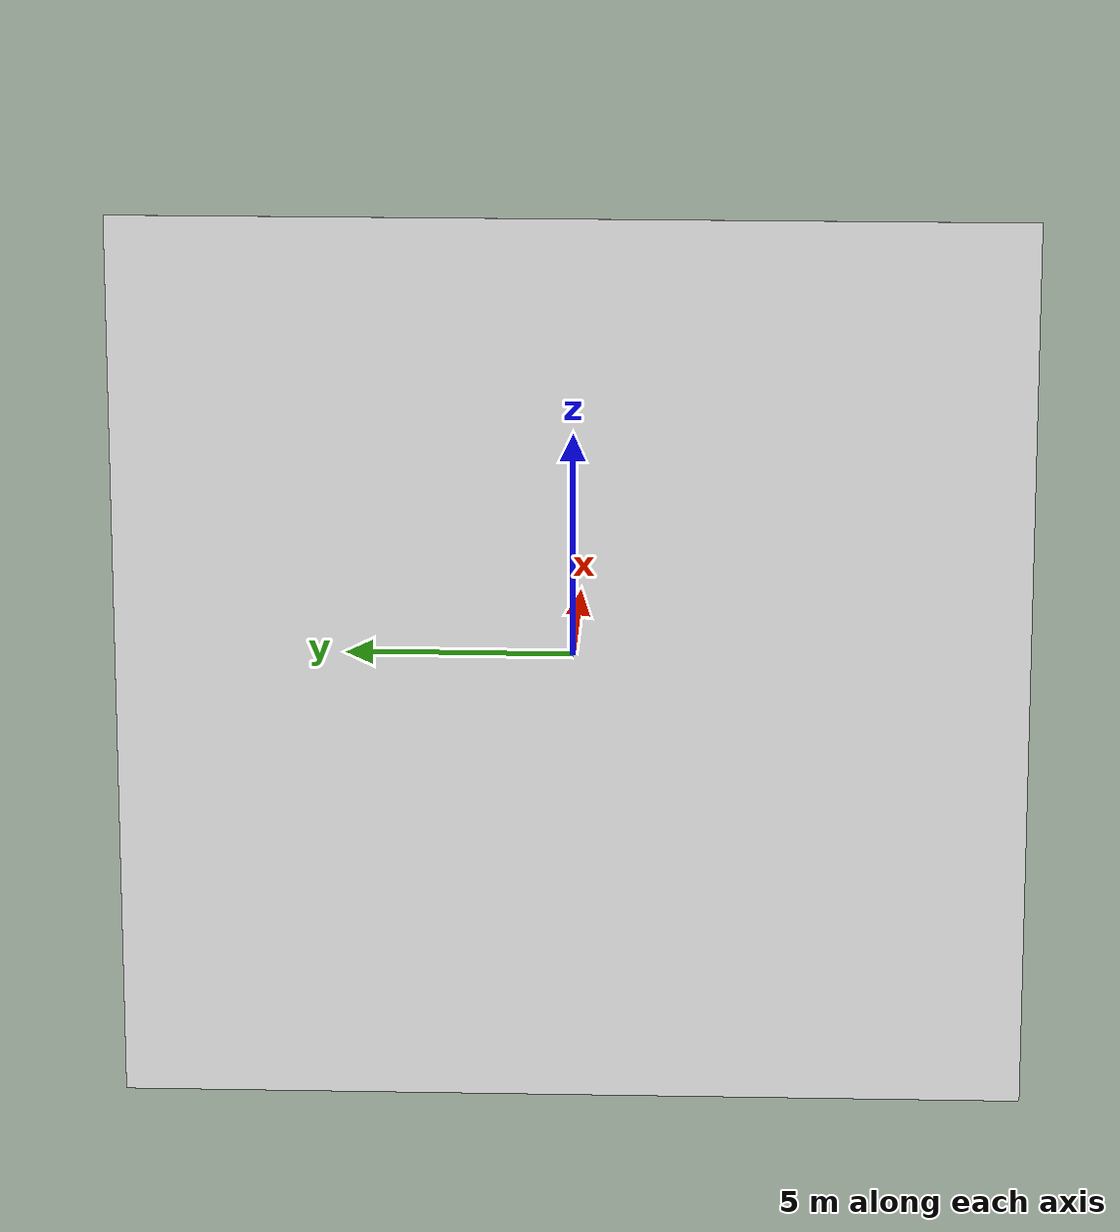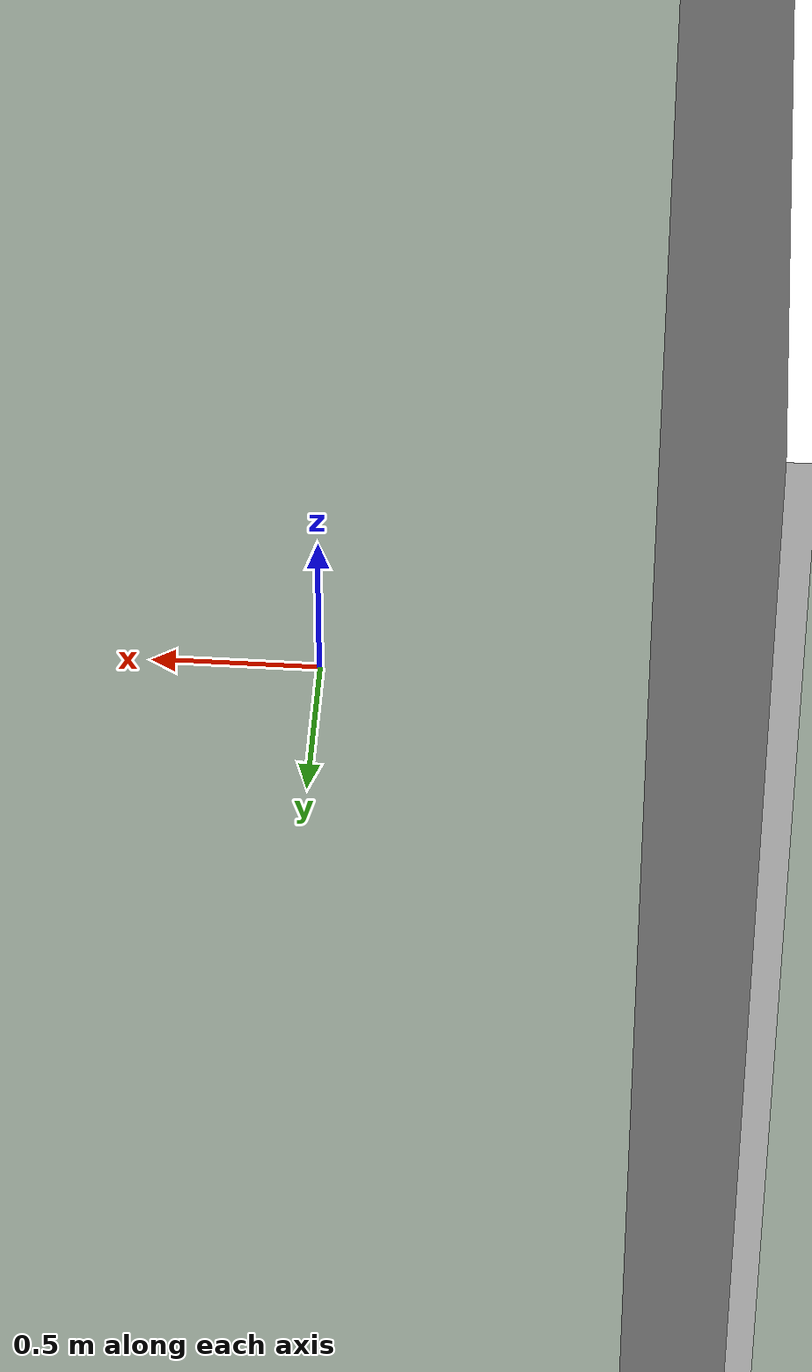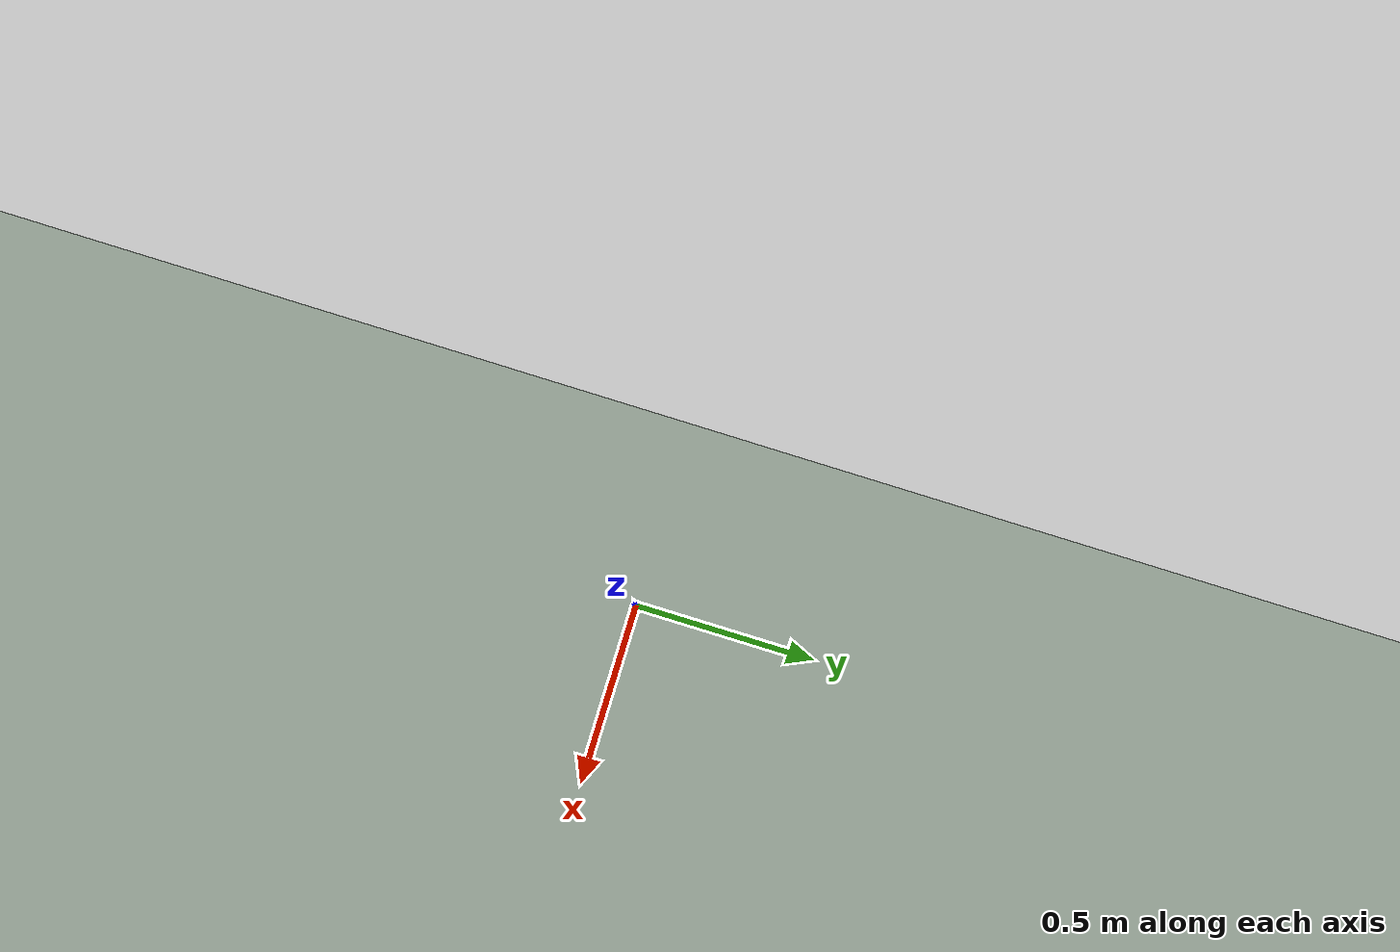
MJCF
<mujoco><asset><mesh name="tooth_plate_mesh" file="tooth_mesh.obj" /></asset><worldbody><geom type="plane" pos="-1 0 0" quat="0.707 0 0.707 0" size="10 10 10" rgba="1 1 1 1" /><body name="rack" pos="0 0 0"><joint name="rack_slider" type="slide" axis="0 1 0" range="-2 2" frictionloss="0.5" solimpfriction="0.95 0.9999 0.001 0.1 2" solreffriction="0.000075 0.030" /><geom type="sphere" size="0.000015" pos="0.0 3.0000000000000004e-08 -4.9e-06" rgba="1 0.3 0.3 1" mass="0.00041269841269841274" contype="1" conaffinity="1" /><geom type="sphere" size="0.000015" pos="0.0 1.5e-06 0.0" rgba="1 0.3 0.3 1" mass="0.00041269841269841274" contype="1" conaffinity="1" /><geom type="sphere" size="0.000015" pos="0.0 0.00017984541479043915 0.00049" rgba="1 0.3 0.3 1" mass="0.00041269841269841274" contype="1" conaffinity="1" /><geom type="sphere" size="0.000015" pos="0.0 0.0001828454147904391 0.00049" rgba="1 0.3 0.3 1" mass="0.00041269841269841274" contype="1" conaffinity="1" /><geom type="sphere" size="0.000015" pos="0.0 0.0003611908295808783 0.0" rgba="1 0.3 0.3 1" mass="0.00041269841269841274" contype="1" conaffinity="1" /><geom type="sphere" size="0.000015" pos="0.0 0.0003626608295808783 -4.9e-06" rgba="1 0.3 0.3 1" mass="0.00041269841269841274" contype="1" conaffinity="1" /><geom type="sphere" size="0.000015" pos="0.0 -0.003626878295808783 -4.9e-06" rgba="1 0.3 0.3 1" mass="0.00041269841269841274" contype="1" conaffinity="1" /><geom type="sphere" size="0.000015" pos="0.0 -0.0036254082958087825 0.0" rgba="1 0.3 0.3 1" mass="0.00041269841269841274" contype="1" conaffinity="1" /><geom type="sphere" size="0.000015" pos="0.0 -0.0034470628810183437 0.00049" rgba="1 0.3 0.3 1" mass="0.00041269841269841274" contype="1" conaffinity="1" /><geom type="sphere" size="0.000015" pos="0.0 -0.0034440628810183437 0.00049" rgba="1 0.3 0.3 1" mass="0.00041269841269841274" contype="1" conaffinity="1" /><geom type="sphere" size="0.000015" pos="0.0 -0.0032657174662279044 0.0" rgba="1 0.3 0.3 1" mass="0.00041269841269841274" contype="1" conaffinity="1" /><geom type="sphere" size="0.000015" pos="0.0 -0.0032642474662279044 -4.9e-06" rgba="1 0.3 0.3 1" mass="0.00041269841269841274" contype="1" conaffinity="1" /><geom type="sphere" size="0.000015" pos="0.0 -0.0032641874662279044 -4.9e-06" rgba="1 0.3 0.3 1" mass="0.00041269841269841274" contype="1" conaffinity="1" /><geom type="sphere" size="0.000015" pos="0.0 -0.003262717466227904 0.0" rgba="1 0.3 0.3 1" mass="0.00041269841269841274" contype="1" conaffinity="1" /><geom type="sphere" size="0.000015" pos="0.0 -0.003084372051437465 0.00049" rgba="1 0.3 0.3 1" mass="0.00041269841269841274" contype="1" conaffinity="1" /><geom type="sphere" size="0.000015" pos="0.0 -0.003081372051437465 0.00049" rgba="1 0.3 0.3 1" mass="0.00041269841269841274" contype="1" conaffinity="1" /><geom type="sphere" size="0.000015" pos="0.0 -0.002903026636647026 0.0" rgba="1 0.3 0.3 1" mass="0.00041269841269841274" contype="1" conaffinity="1" /><geom type="sphere" size="0.000015" pos="0.0 -0.002901556636647026 -4.9e-06" rgba="1 0.3 0.3 1" mass="0.00041269841269841274" contype="1" conaffinity="1" /><geom type="sphere" size="0.000015" pos="0.0 -0.0029014966366470263 -4.9e-06" rgba="1 0.3 0.3 1" mass="0.00041269841269841274" contype="1" conaffinity="1" /><geom type="sphere" size="0.000015" pos="0.0 -0.002900026636647026 0.0" rgba="1 0.3 0.3 1" mass="0.00041269841269841274" contype="1" conaffinity="1" /><geom type="sphere" size="0.000015" pos="0.0 -0.002721681221856587 0.00049" rgba="1 0.3 0.3 1" mass="0.00041269841269841274" contype="1" conaffinity="1" /><geom type="sphere" size="0.000015" pos="0.0 -0.002718681221856587 0.00049" rgba="1 0.3 0.3 1" mass="0.00041269841269841274" contype="1" conaffinity="1" /><geom type="sphere" size="0.000015" pos="0.0 -0.0025403358070661478 0.0" rgba="1 0.3 0.3 1" mass="0.00041269841269841274" contype="1" conaffinity="1" /><geom type="sphere" size="0.000015" pos="0.0 -0.002538865807066148 -4.9e-06" rgba="1 0.3 0.3 1" mass="0.00041269841269841274" contype="1" conaffinity="1" /><geom type="sphere" size="0.000015" pos="0.0 -0.002538805807066148 -4.9e-06" rgba="1 0.3 0.3 1" mass="0.00041269841269841274" contype="1" conaffinity="1" /><geom type="sphere" size="0.000015" pos="0.0 -0.002537335807066148 0.0" rgba="1 0.3 0.3 1" mass="0.00041269841269841274" contype="1" conaffinity="1" /><geom type="sphere" size="0.000015" pos="0.0 -0.002358990392275709 0.00049" rgba="1 0.3 0.3 1" mass="0.00041269841269841274" contype="1" conaffinity="1" /><geom type="sphere" size="0.000015" pos="0.0 -0.002355990392275709 0.00049" rgba="1 0.3 0.3 1" mass="0.00041269841269841274" contype="1" conaffinity="1" /><geom type="sphere" size="0.000015" pos="0.0 -0.0021776449774852697 0.0" rgba="1 0.3 0.3 1" mass="0.00041269841269841274" contype="1" conaffinity="1" /><geom type="sphere" size="0.000015" pos="0.0 -0.0021761749774852697 -4.9e-06" rgba="1 0.3 0.3 1" mass="0.00041269841269841274" contype="1" conaffinity="1" /><geom type="sphere" size="0.000015" pos="0.0 -0.0021761149774852696 -4.9e-06" rgba="1 0.3 0.3 1" mass="0.00041269841269841274" contype="1" conaffinity="1" /><geom type="sphere" size="0.000015" pos="0.0 -0.0021746449774852693 0.0" rgba="1 0.3 0.3 1" mass="0.00041269841269841274" contype="1" conaffinity="1" /><geom type="sphere" size="0.000015" pos="0.0 -0.0019962995626948304 0.00049" rgba="1 0.3 0.3 1" mass="0.00041269841269841274" contype="1" conaffinity="1" /><geom type="sphere" size="0.000015" pos="0.0 -0.0019932995626948304 0.00049" rgba="1 0.3 0.3 1" mass="0.00041269841269841274" contype="1" conaffinity="1" /><geom type="sphere" size="0.000015" pos="0.0 -0.0018149541479043911 0.0" rgba="1 0.3 0.3 1" mass="0.00041269841269841274" contype="1" conaffinity="1" /><geom type="sphere" size="0.000015" pos="0.0 -0.0018134841479043912 -4.9e-06" rgba="1 0.3 0.3 1" mass="0.00041269841269841274" contype="1" conaffinity="1" /><geom type="sphere" size="0.000015" pos="0.0 -0.0018134241479043913 -4.9e-06" rgba="1 0.3 0.3 1" mass="0.00041269841269841274" contype="1" conaffinity="1" /><geom type="sphere" size="0.000015" pos="0.0 -0.0018119541479043914 0.0" rgba="1 0.3 0.3 1" mass="0.00041269841269841274" contype="1" conaffinity="1" /><geom type="sphere" size="0.000015" pos="0.0 -0.0016336087331139523 0.00049" rgba="1 0.3 0.3 1" mass="0.00041269841269841274" contype="1" conaffinity="1" /><geom type="sphere" size="0.000015" pos="0.0 -0.0016306087331139523 0.00049" rgba="1 0.3 0.3 1" mass="0.00041269841269841274" contype="1" conaffinity="1" /><geom type="sphere" size="0.000015" pos="0.0 -0.001452263318323513 0.0" rgba="1 0.3 0.3 1" mass="0.00041269841269841274" contype="1" conaffinity="1" /><geom type="sphere" size="0.000015" pos="0.0 -0.001450793318323513 -4.9e-06" rgba="1 0.3 0.3 1" mass="0.00041269841269841274" contype="1" conaffinity="1" /><geom type="sphere" size="0.000015" pos="0.0 -0.001450733318323513 -4.9e-06" rgba="1 0.3 0.3 1" mass="0.00041269841269841274" contype="1" conaffinity="1" /><geom type="sphere" size="0.000015" pos="0.0 -0.001449263318323513 0.0" rgba="1 0.3 0.3 1" mass="0.00041269841269841274" contype="1" conaffinity="1" /><geom type="sphere" size="0.000015" pos="0.0 -0.001270917903533074 0.00049" rgba="1 0.3 0.3 1" mass="0.00041269841269841274" contype="1" conaffinity="1" /><geom type="sphere" size="0.000015" pos="0.0 -0.001267917903533074 0.00049" rgba="1 0.3 0.3 1" mass="0.00041269841269841274" contype="1" conaffinity="1" /><geom type="sphere" size="0.000015" pos="0.0 -0.0010895724887426347 0.0" rgba="1 0.3 0.3 1" mass="0.00041269841269841274" contype="1" conaffinity="1" /><geom type="sphere" size="0.000015" pos="0.0 -0.0010881024887426348 -4.9e-06" rgba="1 0.3 0.3 1" mass="0.00041269841269841274" contype="1" conaffinity="1" /><geom type="sphere" size="0.000015" pos="0.0 -0.0010880424887426347 -4.9e-06" rgba="1 0.3 0.3 1" mass="0.00041269841269841274" contype="1" conaffinity="1" /><geom type="sphere" size="0.000015" pos="0.0 -0.0010865724887426347 0.0" rgba="1 0.3 0.3 1" mass="0.00041269841269841274" contype="1" conaffinity="1" /><geom type="sphere" size="0.000015" pos="0.0 -0.0009082270739521956 0.00049" rgba="1 0.3 0.3 1" mass="0.00041269841269841274" contype="1" conaffinity="1" /><geom type="sphere" size="0.000015" pos="0.0 -0.0009052270739521956 0.00049" rgba="1 0.3 0.3 1" mass="0.00041269841269841274" contype="1" conaffinity="1" /><geom type="sphere" size="0.000015" pos="0.0 -0.0007268816591617564 0.0" rgba="1 0.3 0.3 1" mass="0.00041269841269841274" contype="1" conaffinity="1" /><geom type="sphere" size="0.000015" pos="0.0 -0.0007254116591617565 -4.9e-06" rgba="1 0.3 0.3 1" mass="0.00041269841269841274" contype="1" conaffinity="1" /><geom type="sphere" size="0.000015" pos="0.0 -0.0007253516591617565 -4.9e-06" rgba="1 0.3 0.3 1" mass="0.00041269841269841274" contype="1" conaffinity="1" /><geom type="sphere" size="0.000015" pos="0.0 -0.0007238816591617565 0.0" rgba="1 0.3 0.3 1" mass="0.00041269841269841274" contype="1" conaffinity="1" /><geom type="sphere" size="0.000015" pos="0.0 -0.0005455362443713173 0.00049" rgba="1 0.3 0.3 1" mass="0.00041269841269841274" contype="1" conaffinity="1" /><geom type="sphere" size="0.000015" pos="0.0 -0.0005425362443713174 0.00049" rgba="1 0.3 0.3 1" mass="0.00041269841269841274" contype="1" conaffinity="1" /><geom type="sphere" size="0.000015" pos="0.0 -0.00036419082958087824 0.0" rgba="1 0.3 0.3 1" mass="0.00041269841269841274" contype="1" conaffinity="1" /><geom type="sphere" size="0.000015" pos="0.0 -0.00036272082958087825 -4.9e-06" rgba="1 0.3 0.3 1" mass="0.00041269841269841274" contype="1" conaffinity="1" /><geom type="sphere" size="0.000015" pos="0.0 -0.0003626608295808783 -4.9e-06" rgba="1 0.3 0.3 1" mass="0.00041269841269841274" contype="1" conaffinity="1" /><geom type="sphere" size="0.000015" pos="0.0 -0.0003611908295808783 0.0" rgba="1 0.3 0.3 1" mass="0.00041269841269841274" contype="1" conaffinity="1" /><geom type="sphere" size="0.000015" pos="0.0 -0.0001828454147904391 0.00049" rgba="1 0.3 0.3 1" mass="0.00041269841269841274" contype="1" conaffinity="1" /><geom type="sphere" size="0.000015" pos="0.0 -0.00017984541479043915 0.00049" rgba="1 0.3 0.3 1" mass="0.00041269841269841274" contype="1" conaffinity="1" /><geom type="sphere" size="0.000015" pos="0.0 -1.4999999999999823e-06 0.0" rgba="1 0.3 0.3 1" mass="0.00041269841269841274" contype="1" conaffinity="1" /><geom type="sphere" size="0.000015" pos="0.0 -2.9999999999984466e-08 -4.9e-06" rgba="1 0.3 0.3 1" mass="0.00041269841269841274" contype="1" conaffinity="1" /><geom type="sphere" size="0.000015" pos="0.0 3.0000000000000004e-08 -4.9e-06" rgba="1 0.3 0.3 1" mass="0.00041269841269841274" contype="1" conaffinity="1" /><geom type="sphere" size="0.000015" pos="0.0 1.5e-06 0.0" rgba="1 0.3 0.3 1" mass="0.00041269841269841274" contype="1" conaffinity="1" /><geom type="sphere" size="0.000015" pos="0.0 0.00017984541479043915 0.00049" rgba="1 0.3 0.3 1" mass="0.00041269841269841274" contype="1" conaffinity="1" /><geom type="sphere" size="0.000015" pos="0.0 0.0001828454147904391 0.00049" rgba="1 0.3 0.3 1" mass="0.00041269841269841274" contype="1" conaffinity="1" /><geom type="sphere" size="0.000015" pos="0.0 0.0003611908295808783 0.0" rgba="1 0.3 0.3 1" mass="0.00041269841269841274" contype="1" conaffinity="1" /><geom type="sphere" size="0.000015" pos="0.0 0.0003626608295808783 -4.9e-06" rgba="1 0.3 0.3 1" mass="0.00041269841269841274" contype="1" conaffinity="1" /><geom type="sphere" size="0.000015" pos="0.0 0.00036272082958087825 -4.9e-06" rgba="1 0.3 0.3 1" mass="0.00041269841269841274" contype="1" conaffinity="1" /><geom type="sphere" size="0.000015" pos="0.0 0.00036419082958087824 0.0" rgba="1 0.3 0.3 1" mass="0.00041269841269841274" contype="1" conaffinity="1" /><geom type="sphere" size="0.000015" pos="0.0 0.0005425362443713174 0.00049" rgba="1 0.3 0.3 1" mass="0.00041269841269841274" contype="1" conaffinity="1" /><geom type="sphere" size="0.000015" pos="0.0 0.0005455362443713173 0.00049" rgba="1 0.3 0.3 1" mass="0.00041269841269841274" contype="1" conaffinity="1" /><geom type="sphere" size="0.000015" pos="0.0 0.0007238816591617565 0.0" rgba="1 0.3 0.3 1" mass="0.00041269841269841274" contype="1" conaffinity="1" /><geom type="sphere" size="0.000015" pos="0.0 0.0007253516591617566 -4.9e-06" rgba="1 0.3 0.3 1" mass="0.00041269841269841274" contype="1" conaffinity="1" /><geom type="sphere" size="0.000015" pos="0.0 0.0007254116591617566 -4.9e-06" rgba="1 0.3 0.3 1" mass="0.00041269841269841274" contype="1" conaffinity="1" /><geom type="sphere" size="0.000015" pos="0.0 0.0007268816591617565 0.0" rgba="1 0.3 0.3 1" mass="0.00041269841269841274" contype="1" conaffinity="1" /><geom type="sphere" size="0.000015" pos="0.0 0.0009052270739521957 0.00049" rgba="1 0.3 0.3 1" mass="0.00041269841269841274" contype="1" conaffinity="1" /><geom type="sphere" size="0.000015" pos="0.0 0.0009082270739521957 0.00049" rgba="1 0.3 0.3 1" mass="0.00041269841269841274" contype="1" conaffinity="1" /><geom type="sphere" size="0.000015" pos="0.0 0.0010865724887426347 0.0" rgba="1 0.3 0.3 1" mass="0.00041269841269841274" contype="1" conaffinity="1" /><geom type="sphere" size="0.000015" pos="0.0 0.001088042488742635 -4.9e-06" rgba="1 0.3 0.3 1" mass="0.00041269841269841274" contype="1" conaffinity="1" /><geom type="sphere" size="0.000015" pos="0.0 0.0010881024887426348 -4.9e-06" rgba="1 0.3 0.3 1" mass="0.00041269841269841274" contype="1" conaffinity="1" /><geom type="sphere" size="0.000015" pos="0.0 0.0010895724887426347 0.0" rgba="1 0.3 0.3 1" mass="0.00041269841269841274" contype="1" conaffinity="1" /><geom type="sphere" size="0.000015" pos="0.0 0.0012679179035330738 0.00049" rgba="1 0.3 0.3 1" mass="0.00041269841269841274" contype="1" conaffinity="1" /><geom type="sphere" size="0.000015" pos="0.0 0.0012709179035330738 0.00049" rgba="1 0.3 0.3 1" mass="0.00041269841269841274" contype="1" conaffinity="1" /><geom type="sphere" size="0.000015" pos="0.0 0.001449263318323513 0.0" rgba="1 0.3 0.3 1" mass="0.00041269841269841274" contype="1" conaffinity="1" /><geom type="sphere" size="0.000015" pos="0.0 0.001450733318323513 -4.9e-06" rgba="1 0.3 0.3 1" mass="0.00041269841269841274" contype="1" conaffinity="1" /><geom type="sphere" size="0.000015" pos="0.0 0.001450793318323513 -4.9e-06" rgba="1 0.3 0.3 1" mass="0.00041269841269841274" contype="1" conaffinity="1" /><geom type="sphere" size="0.000015" pos="0.0 0.001452263318323513 0.0" rgba="1 0.3 0.3 1" mass="0.00041269841269841274" contype="1" conaffinity="1" /><geom type="sphere" size="0.000015" pos="0.0 0.0016306087331139521 0.00049" rgba="1 0.3 0.3 1" mass="0.00041269841269841274" contype="1" conaffinity="1" /><geom type="sphere" size="0.000015" pos="0.0 0.001633608733113952 0.00049" rgba="1 0.3 0.3 1" mass="0.00041269841269841274" contype="1" conaffinity="1" /><geom type="sphere" size="0.000015" pos="0.0 0.0018119541479043914 0.0" rgba="1 0.3 0.3 1" mass="0.00041269841269841274" contype="1" conaffinity="1" /><geom type="sphere" size="0.000015" pos="0.0 0.0018134241479043913 -4.9e-06" rgba="1 0.3 0.3 1" mass="0.00041269841269841274" contype="1" conaffinity="1" /><geom type="sphere" size="0.000015" pos="0.0 0.0018134841479043914 -4.9e-06" rgba="1 0.3 0.3 1" mass="0.00041269841269841274" contype="1" conaffinity="1" /><geom type="sphere" size="0.000015" pos="0.0 0.0018149541479043913 0.0" rgba="1 0.3 0.3 1" mass="0.00041269841269841274" contype="1" conaffinity="1" /><geom type="sphere" size="0.000015" pos="0.0 0.0019932995626948304 0.00049" rgba="1 0.3 0.3 1" mass="0.00041269841269841274" contype="1" conaffinity="1" /><geom type="sphere" size="0.000015" pos="0.0 0.0019962995626948304 0.00049" rgba="1 0.3 0.3 1" mass="0.00041269841269841274" contype="1" conaffinity="1" /><geom type="sphere" size="0.000015" pos="0.0 0.0021746449774852697 0.0" rgba="1 0.3 0.3 1" mass="0.00041269841269841274" contype="1" conaffinity="1" /><geom type="sphere" size="0.000015" pos="0.0 0.0021761149774852696 -4.9e-06" rgba="1 0.3 0.3 1" mass="0.00041269841269841274" contype="1" conaffinity="1" /><geom type="sphere" size="0.000015" pos="0.0 0.0021761749774852693 -4.9e-06" rgba="1 0.3 0.3 1" mass="0.00041269841269841274" contype="1" conaffinity="1" /><geom type="sphere" size="0.000015" pos="0.0 0.0021776449774852697 0.0" rgba="1 0.3 0.3 1" mass="0.00041269841269841274" contype="1" conaffinity="1" /><geom type="sphere" size="0.000015" pos="0.0 0.0023559903922757085 0.00049" rgba="1 0.3 0.3 1" mass="0.00041269841269841274" contype="1" conaffinity="1" /><geom type="sphere" size="0.000015" pos="0.0 0.0023589903922757085 0.00049" rgba="1 0.3 0.3 1" mass="0.00041269841269841274" contype="1" conaffinity="1" /><geom type="sphere" size="0.000015" pos="0.0 0.002537335807066148 0.0" rgba="1 0.3 0.3 1" mass="0.00041269841269841274" contype="1" conaffinity="1" /><geom type="sphere" size="0.000015" pos="0.0 0.0025388058070661477 -4.9e-06" rgba="1 0.3 0.3 1" mass="0.00041269841269841274" contype="1" conaffinity="1" /><geom type="sphere" size="0.000015" pos="0.0 0.002538865807066148 -4.9e-06" rgba="1 0.3 0.3 1" mass="0.00041269841269841274" contype="1" conaffinity="1" /><geom type="sphere" size="0.000015" pos="0.0 0.002540335807066148 0.0" rgba="1 0.3 0.3 1" mass="0.00041269841269841274" contype="1" conaffinity="1" /><geom type="sphere" size="0.000015" pos="0.0 0.002718681221856587 0.00049" rgba="1 0.3 0.3 1" mass="0.00041269841269841274" contype="1" conaffinity="1" /><geom type="sphere" size="0.000015" pos="0.0 0.002721681221856587 0.00049" rgba="1 0.3 0.3 1" mass="0.00041269841269841274" contype="1" conaffinity="1" /><geom type="sphere" size="0.000015" pos="0.0 0.0029000266366470263 0.0" rgba="1 0.3 0.3 1" mass="0.00041269841269841274" contype="1" conaffinity="1" /><geom type="sphere" size="0.000015" pos="0.0 0.0029014966366470263 -4.9e-06" rgba="1 0.3 0.3 1" mass="0.00041269841269841274" contype="1" conaffinity="1" /><geom type="sphere" size="0.000015" pos="0.0 0.002901556636647026 -4.9e-06" rgba="1 0.3 0.3 1" mass="0.00041269841269841274" contype="1" conaffinity="1" /><geom type="sphere" size="0.000015" pos="0.0 0.0029030266366470263 0.0" rgba="1 0.3 0.3 1" mass="0.00041269841269841274" contype="1" conaffinity="1" /><geom type="sphere" size="0.000015" pos="0.0 0.003081372051437465 0.00049" rgba="1 0.3 0.3 1" mass="0.00041269841269841274" contype="1" conaffinity="1" /><geom type="sphere" size="0.000015" pos="0.0 0.003084372051437465 0.00049" rgba="1 0.3 0.3 1" mass="0.00041269841269841274" contype="1" conaffinity="1" /><geom type="sphere" size="0.000015" pos="0.0 0.0032627174662279044 0.0" rgba="1 0.3 0.3 1" mass="0.00041269841269841274" contype="1" conaffinity="1" /><geom type="sphere" size="0.000015" pos="0.0 0.0032641874662279044 -4.9e-06" rgba="1 0.3 0.3 1" mass="0.00041269841269841274" contype="1" conaffinity="1" /><geom type="sphere" size="0.000015" pos="0.0 0.003264247466227904 -4.9e-06" rgba="1 0.3 0.3 1" mass="0.00041269841269841274" contype="1" conaffinity="1" /><geom type="sphere" size="0.000015" pos="0.0 0.0032657174662279044 0.0" rgba="1 0.3 0.3 1" mass="0.00041269841269841274" contype="1" conaffinity="1" /><geom type="sphere" size="0.000015" pos="0.0 0.0034440628810183433 0.00049" rgba="1 0.3 0.3 1" mass="0.00041269841269841274" contype="1" conaffinity="1" /><geom type="sphere" size="0.000015" pos="0.0 0.0034470628810183432 0.00049" rgba="1 0.3 0.3 1" mass="0.00041269841269841274" contype="1" conaffinity="1" /><geom type="sphere" size="0.000015" pos="0.0 0.0036254082958087825 0.0" rgba="1 0.3 0.3 1" mass="0.00041269841269841274" contype="1" conaffinity="1" /><geom type="sphere" size="0.000015" pos="0.0 0.0036268782958087825 -4.9e-06" rgba="1 0.3 0.3 1" mass="0.00041269841269841274" contype="1" conaffinity="1" /></body><body name="tooth_plate_0" pos="0 0.0005440362443713174 0.00098" axisangle="0 1 0 180"><geom type="mesh" mesh="tooth_plate_mesh" size="1 1 1" contype="1" conaffinity="1" rgba="0 1 0 1" mass="0.00022" /><joint name="tooth_slider_0" type="slide" axis="0 0 1" stiffness="340.0" springref="-0.01" solimplimit="0.95 0.9999 0.001 0.1 2" solreflimit="0.000075 0.100" limited="true" range="-3.675e-05 1" frictionloss="2.5" solimpfriction="0.95 0.9999 0.001 0.1 2" solreffriction="0.000075 0.030" /></body><body name="tooth_plate_1" pos="0 0.0013600906109282936 0.00098" axisangle="0 1 0 180"><geom type="mesh" mesh="tooth_plate_mesh" size="1 1 1" contype="1" conaffinity="1" rgba="0 1 0 1" mass="0.00022" /><joint name="tooth_slider_1" type="slide" axis="0 0 1" stiffness="340.0" springref="-0.01" solimplimit="0.95 0.9999 0.001 0.1 2" solreflimit="0.000075 0.100" limited="true" range="-3.675e-05 1" frictionloss="2.5" solimpfriction="0.95 0.9999 0.001 0.1 2" solreffriction="0.000075 0.030" /></body><body name="tooth_plate_2" pos="0 0.0021761449774852695 0.00098" axisangle="0 1 0 180"><geom type="mesh" mesh="tooth_plate_mesh" size="1 1 1" contype="1" conaffinity="1" rgba="0 1 0 1" mass="0.00022" /><joint name="tooth_slider_2" type="slide" axis="0 0 1" stiffness="340.0" springref="-0.01" solimplimit="0.95 0.9999 0.001 0.1 2" solreflimit="0.000075 0.100" limited="true" range="-3.675e-05 1" frictionloss="2.5" solimpfriction="0.95 0.9999 0.001 0.1 2" solreffriction="0.000075 0.030" /></body><body name="tooth_plate_3" pos="0 0.0029921993440422453 0.00098" axisangle="0 1 0 180"><geom type="mesh" mesh="tooth_plate_mesh" size="1 1 1" contype="1" conaffinity="1" rgba="0 1 0 1" mass="0.00022" /><joint name="tooth_slider_3" type="slide" axis="0 0 1" stiffness="340.0" springref="-0.01" solimplimit="0.95 0.9999 0.001 0.1 2" solreflimit="0.000075 0.100" limited="true" range="-3.675e-05 1" frictionloss="2.5" solimpfriction="0.95 0.9999 0.001 0.1 2" solreffriction="0.000075 0.030" /></body><camera name="custom_cam2" fovy="0.01" pos="12 0.002 0.0005" quat="0.5 0.5 0.5 0.5" /><camera name="custom_cam3" pos="0.0025 0.0015 0.0005" quat="0.5 0.5 0.5 0.5" /><camera name="custom_cam4" pos="0.005 0.0004 0" quat="0.5 0.5 0.5 0.5" /></worldbody><actuator><general joint="rack_slider" name="rack_actuator" gainprm="1" /><general joint="tooth_slider_0" name="tooth_slider_actuator_0" gainprm="1" /><general joint="tooth_slider_1" name="tooth_slider_actuator_1" gainprm="1" /><general joint="tooth_slider_2" name="tooth_slider_actuator_2" gainprm="1" /><general joint="tooth_slider_3" name="tooth_slider_actuator_3" gainprm="1" /></actuator><option timestep="2e-06" gravity="0 0 0" /><default><geom solimp="0.95 0.9999 0.001 0.1 2" solref="0.000075 0.030" margin="0.00000001" /></default><compiler /><visual><global offwidth="800" offheight="600" /><map znear="0.0000001" zfar="100000" /></visual></mujoco>
